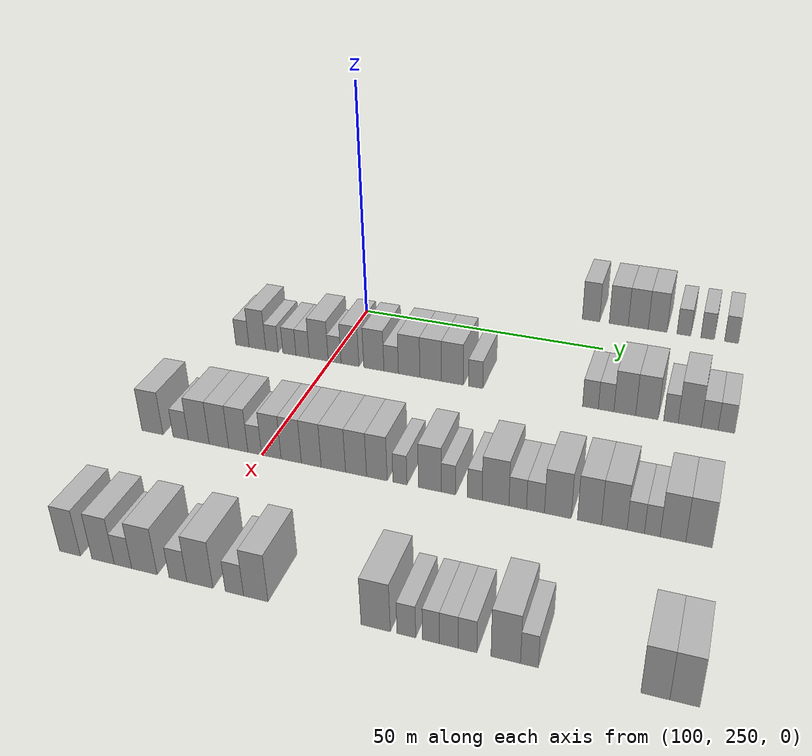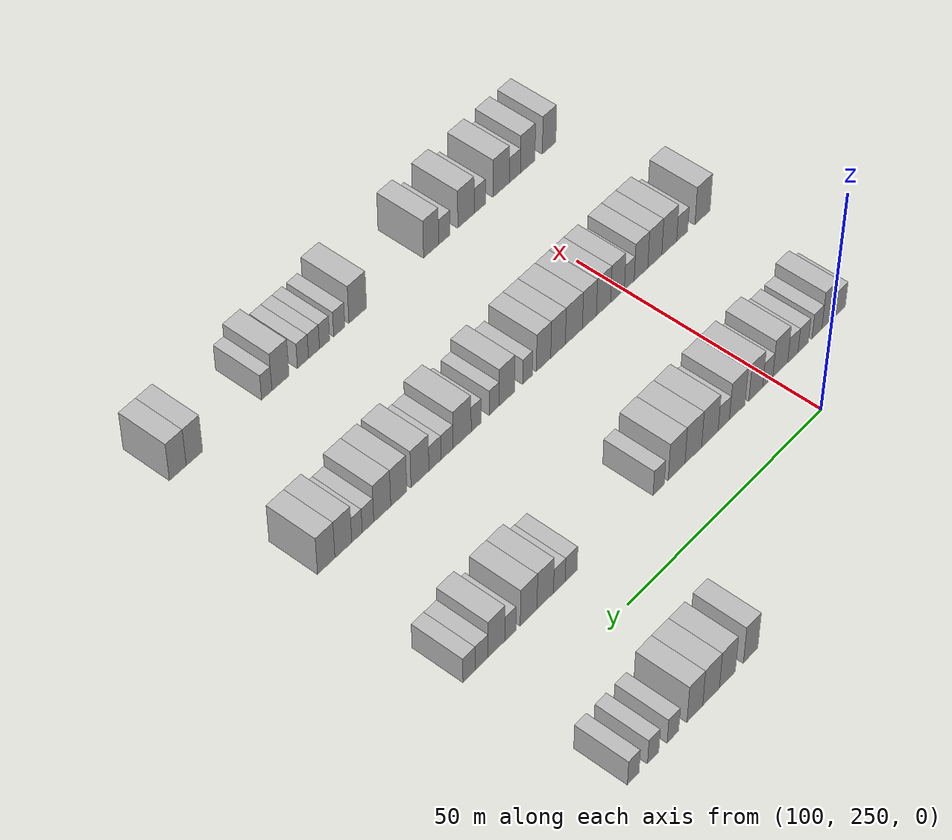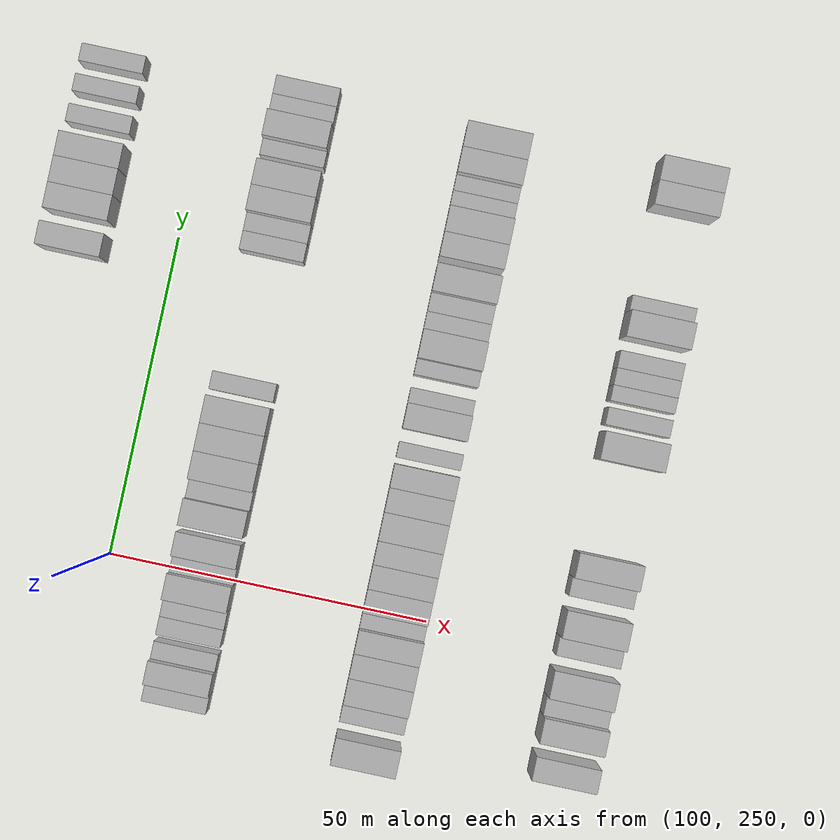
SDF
<sdf version="1.6">
 <world name="default">
  <model name="building_656">
   <static>1</static>
   <pose>85.0000 295.6722 0 0.000000 0.000000 0.000000</pose>
   <link name="link">
    <pose>0 0 4.50 0 0 0</pose>
    <collision name="collision"><geometry><box><size>10.0000 3.6023 9.0000</size></box></geometry></collision>
    <visual name="visual">
     <cast_shadows>0</cast_shadows>
     <geometry><box><size>10.0000 3.6023 9.0000</size></box></geometry>
     <material>
      <script>
       <uri>model://HANNAS_wall/materials/scripts</uri>
       <uri>model://HANNAS_wall/materials/textures</uri>
       <name>vrc/HANNAS_wall</name>
      </script>
     </material>
    </visual>
   </link>
  </model>
  <model name="building_657">
   <static>1</static>
   <pose>85.0000 301.4416 0 0.000000 0.000000 0.000000</pose>
   <link name="link">
    <pose>0 0 4.50 0 0 0</pose>
    <collision name="collision"><geometry><box><size>10.0000 3.9364 9.0000</size></box></geometry></collision>
    <visual name="visual">
     <cast_shadows>0</cast_shadows>
     <geometry><box><size>10.0000 3.9364 9.0000</size></box></geometry>
     <material>
      <script>
       <uri>model://HANNAS_wall/materials/scripts</uri>
       <uri>model://HANNAS_wall/materials/textures</uri>
       <name>vrc/HANNAS_wall</name>
      </script>
     </material>
    </visual>
   </link>
  </model>
  <model name="building_658">
   <static>1</static>
   <pose>85.0000 305.4466 0 0.000000 0.000000 0.000000</pose>
   <link name="link">
    <pose>0 0 4.50 0 0 0</pose>
    <collision name="collision"><geometry><box><size>10.0000 4.0737 9.0000</size></box></geometry></collision>
    <visual name="visual">
     <cast_shadows>0</cast_shadows>
     <geometry><box><size>10.0000 4.0737 9.0000</size></box></geometry>
     <material>
      <script>
       <uri>model://HANNAS_wall/materials/scripts</uri>
       <uri>model://HANNAS_wall/materials/textures</uri>
       <name>vrc/HANNAS_wall</name>
      </script>
     </material>
    </visual>
   </link>
  </model>
  <model name="building_659">
   <static>1</static>
   <pose>85.0000 309.3967 0 0.000000 0.000000 0.000000</pose>
   <link name="link">
    <pose>0 0 4.50 0 0 0</pose>
    <collision name="collision"><geometry><box><size>10.0000 3.8263 9.0000</size></box></geometry></collision>
    <visual name="visual">
     <cast_shadows>0</cast_shadows>
     <geometry><box><size>10.0000 3.8263 9.0000</size></box></geometry>
     <material>
      <script>
       <uri>model://HANNAS_wall/materials/scripts</uri>
       <uri>model://HANNAS_wall/materials/textures</uri>
       <name>vrc/HANNAS_wall</name>
      </script>
     </material>
    </visual>
   </link>
  </model>
  <model name="building_660">
   <static>1</static>
   <pose>85.0000 314.6953 0 0.000000 0.000000 0.000000</pose>
   <link name="link">
    <pose>0 0 3.00 0 0 0</pose>
    <collision name="collision"><geometry><box><size>10.0000 2.7709 6.0000</size></box></geometry></collision>
    <visual name="visual">
     <cast_shadows>0</cast_shadows>
     <geometry><box><size>10.0000 2.7709 6.0000</size></box></geometry>
     <material>
      <script>
       <uri>model://HANNAS_wall/materials/scripts</uri>
       <uri>model://HANNAS_wall/materials/textures</uri>
       <name>vrc/HANNAS_wall</name>
      </script>
     </material>
    </visual>
   </link>
  </model>
  <model name="building_661">
   <static>1</static>
   <pose>85.0000 319.4210 0 0.000000 0.000000 0.000000</pose>
   <link name="link">
    <pose>0 0 3.00 0 0 0</pose>
    <collision name="collision"><geometry><box><size>10.0000 2.6805 6.0000</size></box></geometry></collision>
    <visual name="visual">
     <cast_shadows>0</cast_shadows>
     <geometry><box><size>10.0000 2.6805 6.0000</size></box></geometry>
     <material>
      <script>
       <uri>model://HANNAS_wall/materials/scripts</uri>
       <uri>model://HANNAS_wall/materials/textures</uri>
       <name>vrc/HANNAS_wall</name>
      </script>
     </material>
    </visual>
   </link>
  </model>
  <model name="building_662">
   <static>1</static>
   <pose>85.0000 324.1314 0 0.000000 0.000000 0.000000</pose>
   <link name="link">
    <pose>0 0 3.00 0 0 0</pose>
    <collision name="collision"><geometry><box><size>10.0000 2.7404 6.0000</size></box></geometry></collision>
    <visual name="visual">
     <cast_shadows>0</cast_shadows>
     <geometry><box><size>10.0000 2.7404 6.0000</size></box></geometry>
     <material>
      <script>
       <uri>model://HANNAS_wall/materials/scripts</uri>
       <uri>model://HANNAS_wall/materials/textures</uri>
       <name>vrc/HANNAS_wall</name>
      </script>
     </material>
    </visual>
   </link>
  </model>
  <model name="building_856">
   <static>1</static>
   <pose>115.0000 231.1654 0 0.000000 0.000000 0.000000</pose>
   <link name="link">
    <pose>0 0 3.00 0 0 0</pose>
    <collision name="collision"><geometry><box><size>10.0000 2.9213 6.0000</size></box></geometry></collision>
    <visual name="visual">
     <cast_shadows>0</cast_shadows>
     <geometry><box><size>10.0000 2.9213 6.0000</size></box></geometry>
     <material>
      <script>
       <uri>model://HANNAS_wall/materials/scripts</uri>
       <uri>model://HANNAS_wall/materials/textures</uri>
       <name>vrc/HANNAS_wall</name>
      </script>
     </material>
    </visual>
   </link>
  </model>
  <model name="building_857">
   <static>1</static>
   <pose>115.0000 234.4390 0 0.000000 0.000000 0.000000</pose>
   <link name="link">
    <pose>0 0 4.50 0 0 0</pose>
    <collision name="collision"><geometry><box><size>10.0000 3.6260 9.0000</size></box></geometry></collision>
    <visual name="visual">
     <cast_shadows>0</cast_shadows>
     <geometry><box><size>10.0000 3.6260 9.0000</size></box></geometry>
     <material>
      <script>
       <uri>model://HANNAS_wall/materials/scripts</uri>
       <uri>model://HANNAS_wall/materials/textures</uri>
       <name>vrc/HANNAS_wall</name>
      </script>
     </material>
    </visual>
   </link>
  </model>
  <model name="building_858">
   <static>1</static>
   <pose>115.0000 237.6029 0 0.000000 0.000000 0.000000</pose>
   <link name="link">
    <pose>0 0 3.00 0 0 0</pose>
    <collision name="collision"><geometry><box><size>10.0000 2.7017 6.0000</size></box></geometry></collision>
    <visual name="visual">
     <cast_shadows>0</cast_shadows>
     <geometry><box><size>10.0000 2.7017 6.0000</size></box></geometry>
     <material>
      <script>
       <uri>model://HANNAS_wall/materials/scripts</uri>
       <uri>model://HANNAS_wall/materials/textures</uri>
       <name>vrc/HANNAS_wall</name>
      </script>
     </material>
    </visual>
   </link>
  </model>
  <model name="building_859">
   <static>1</static>
   <pose>115.0000 241.3608 0 0.000000 0.000000 0.000000</pose>
   <link name="link">
    <pose>0 0 3.00 0 0 0</pose>
    <collision name="collision"><geometry><box><size>10.0000 2.8141 6.0000</size></box></geometry></collision>
    <visual name="visual">
     <cast_shadows>0</cast_shadows>
     <geometry><box><size>10.0000 2.8141 6.0000</size></box></geometry>
     <material>
      <script>
       <uri>model://HANNAS_wall/materials/scripts</uri>
       <uri>model://HANNAS_wall/materials/textures</uri>
       <name>vrc/HANNAS_wall</name>
      </script>
     </material>
    </visual>
   </link>
  </model>
  <model name="building_860">
   <static>1</static>
   <pose>115.0000 244.1861 0 0.000000 0.000000 0.000000</pose>
   <link name="link">
    <pose>0 0 3.00 0 0 0</pose>
    <collision name="collision"><geometry><box><size>10.0000 2.8364 6.0000</size></box></geometry></collision>
    <visual name="visual">
     <cast_shadows>0</cast_shadows>
     <geometry><box><size>10.0000 2.8364 6.0000</size></box></geometry>
     <material>
      <script>
       <uri>model://HANNAS_wall/materials/scripts</uri>
       <uri>model://HANNAS_wall/materials/textures</uri>
       <name>vrc/HANNAS_wall</name>
      </script>
     </material>
    </visual>
   </link>
  </model>
  <model name="building_861">
   <static>1</static>
   <pose>115.0000 247.6095 0 0.000000 0.000000 0.000000</pose>
   <link name="link">
    <pose>0 0 4.50 0 0 0</pose>
    <collision name="collision"><geometry><box><size>10.0000 4.0104 9.0000</size></box></geometry></collision>
    <visual name="visual">
     <cast_shadows>0</cast_shadows>
     <geometry><box><size>10.0000 4.0104 9.0000</size></box></geometry>
     <material>
      <script>
       <uri>model://HANNAS_wall/materials/scripts</uri>
       <uri>model://HANNAS_wall/materials/textures</uri>
       <name>vrc/HANNAS_wall</name>
      </script>
     </material>
    </visual>
   </link>
  </model>
  <model name="building_862">
   <static>1</static>
   <pose>115.0000 250.9654 0 0.000000 0.000000 0.000000</pose>
   <link name="link">
    <pose>0 0 3.00 0 0 0</pose>
    <collision name="collision"><geometry><box><size>10.0000 2.7015 6.0000</size></box></geometry></collision>
    <visual name="visual">
     <cast_shadows>0</cast_shadows>
     <geometry><box><size>10.0000 2.7015 6.0000</size></box></geometry>
     <material>
      <script>
       <uri>model://HANNAS_wall/materials/scripts</uri>
       <uri>model://HANNAS_wall/materials/textures</uri>
       <name>vrc/HANNAS_wall</name>
      </script>
     </material>
    </visual>
   </link>
  </model>
  <model name="building_863">
   <static>1</static>
   <pose>115.0000 254.1731 0 0.000000 0.000000 0.000000</pose>
   <link name="link">
    <pose>0 0 4.50 0 0 0</pose>
    <collision name="collision"><geometry><box><size>10.0000 3.7139 9.0000</size></box></geometry></collision>
    <visual name="visual">
     <cast_shadows>0</cast_shadows>
     <geometry><box><size>10.0000 3.7139 9.0000</size></box></geometry>
     <material>
      <script>
       <uri>model://HANNAS_wall/materials/scripts</uri>
       <uri>model://HANNAS_wall/materials/textures</uri>
       <name>vrc/HANNAS_wall</name>
      </script>
     </material>
    </visual>
   </link>
  </model>
  <model name="building_864">
   <static>1</static>
   <pose>115.0000 259.0978 0 0.000000 0.000000 0.000000</pose>
   <link name="link">
    <pose>0 0 4.50 0 0 0</pose>
    <collision name="collision"><geometry><box><size>10.0000 4.1354 9.0000</size></box></geometry></collision>
    <visual name="visual">
     <cast_shadows>0</cast_shadows>
     <geometry><box><size>10.0000 4.1354 9.0000</size></box></geometry>
     <material>
      <script>
       <uri>model://HANNAS_wall/materials/scripts</uri>
       <uri>model://HANNAS_wall/materials/textures</uri>
       <name>vrc/HANNAS_wall</name>
      </script>
     </material>
    </visual>
   </link>
  </model>
  <model name="building_865">
   <static>1</static>
   <pose>115.0000 262.6430 0 0.000000 0.000000 0.000000</pose>
   <link name="link">
    <pose>0 0 3.00 0 0 0</pose>
    <collision name="collision"><geometry><box><size>10.0000 2.9552 6.0000</size></box></geometry></collision>
    <visual name="visual">
     <cast_shadows>0</cast_shadows>
     <geometry><box><size>10.0000 2.9552 6.0000</size></box></geometry>
     <material>
      <script>
       <uri>model://HANNAS_wall/materials/scripts</uri>
       <uri>model://HANNAS_wall/materials/textures</uri>
       <name>vrc/HANNAS_wall</name>
      </script>
     </material>
    </visual>
   </link>
  </model>
  <model name="building_866">
   <static>1</static>
   <pose>115.0000 266.2830 0 0.000000 0.000000 0.000000</pose>
   <link name="link">
    <pose>0 0 4.50 0 0 0</pose>
    <collision name="collision"><geometry><box><size>10.0000 4.3247 9.0000</size></box></geometry></collision>
    <visual name="visual">
     <cast_shadows>0</cast_shadows>
     <geometry><box><size>10.0000 4.3247 9.0000</size></box></geometry>
     <material>
      <script>
       <uri>model://HANNAS_wall/materials/scripts</uri>
       <uri>model://HANNAS_wall/materials/textures</uri>
       <name>vrc/HANNAS_wall</name>
      </script>
     </material>
    </visual>
   </link>
  </model>
  <model name="building_867">
   <static>1</static>
   <pose>115.0000 270.5952 0 0.000000 0.000000 0.000000</pose>
   <link name="link">
    <pose>0 0 4.50 0 0 0</pose>
    <collision name="collision"><geometry><box><size>10.0000 4.2998 9.0000</size></box></geometry></collision>
    <visual name="visual">
     <cast_shadows>0</cast_shadows>
     <geometry><box><size>10.0000 4.2998 9.0000</size></box></geometry>
     <material>
      <script>
       <uri>model://HANNAS_wall/materials/scripts</uri>
       <uri>model://HANNAS_wall/materials/textures</uri>
       <name>vrc/HANNAS_wall</name>
      </script>
     </material>
    </visual>
   </link>
  </model>
  <model name="building_868">
   <static>1</static>
   <pose>115.0000 274.9008 0 0.000000 0.000000 0.000000</pose>
   <link name="link">
    <pose>0 0 4.50 0 0 0</pose>
    <collision name="collision"><geometry><box><size>10.0000 4.3114 9.0000</size></box></geometry></collision>
    <visual name="visual">
     <cast_shadows>0</cast_shadows>
     <geometry><box><size>10.0000 4.3114 9.0000</size></box></geometry>
     <material>
      <script>
       <uri>model://HANNAS_wall/materials/scripts</uri>
       <uri>model://HANNAS_wall/materials/textures</uri>
       <name>vrc/HANNAS_wall</name>
      </script>
     </material>
    </visual>
   </link>
  </model>
  <model name="building_869">
   <static>1</static>
   <pose>115.0000 279.4693 0 0.000000 0.000000 0.000000</pose>
   <link name="link">
    <pose>0 0 3.00 0 0 0</pose>
    <collision name="collision"><geometry><box><size>10.0000 2.8256 6.0000</size></box></geometry></collision>
    <visual name="visual">
     <cast_shadows>0</cast_shadows>
     <geometry><box><size>10.0000 2.8256 6.0000</size></box></geometry>
     <material>
      <script>
       <uri>model://HANNAS_wall/materials/scripts</uri>
       <uri>model://HANNAS_wall/materials/textures</uri>
       <name>vrc/HANNAS_wall</name>
      </script>
     </material>
    </visual>
   </link>
  </model>
  <model name="building_870">
   <static>1</static>
   <pose>115.0000 301.2437 0 0.000000 0.000000 0.000000</pose>
   <link name="link">
    <pose>0 0 3.00 0 0 0</pose>
    <collision name="collision"><geometry><box><size>10.0000 2.9077 6.0000</size></box></geometry></collision>
    <visual name="visual">
     <cast_shadows>0</cast_shadows>
     <geometry><box><size>10.0000 2.9077 6.0000</size></box></geometry>
     <material>
      <script>
       <uri>model://HANNAS_wall/materials/scripts</uri>
       <uri>model://HANNAS_wall/materials/textures</uri>
       <name>vrc/HANNAS_wall</name>
      </script>
     </material>
    </visual>
   </link>
  </model>
  <model name="building_871">
   <static>1</static>
   <pose>115.0000 304.1183 0 0.000000 0.000000 0.000000</pose>
   <link name="link">
    <pose>0 0 3.00 0 0 0</pose>
    <collision name="collision"><geometry><box><size>10.0000 2.8414 6.0000</size></box></geometry></collision>
    <visual name="visual">
     <cast_shadows>0</cast_shadows>
     <geometry><box><size>10.0000 2.8414 6.0000</size></box></geometry>
     <material>
      <script>
       <uri>model://HANNAS_wall/materials/scripts</uri>
       <uri>model://HANNAS_wall/materials/textures</uri>
       <name>vrc/HANNAS_wall</name>
      </script>
     </material>
    </visual>
   </link>
  </model>
  <model name="building_872">
   <static>1</static>
   <pose>115.0000 307.5139 0 0.000000 0.000000 0.000000</pose>
   <link name="link">
    <pose>0 0 4.50 0 0 0</pose>
    <collision name="collision"><geometry><box><size>10.0000 3.9498 9.0000</size></box></geometry></collision>
    <visual name="visual">
     <cast_shadows>0</cast_shadows>
     <geometry><box><size>10.0000 3.9498 9.0000</size></box></geometry>
     <material>
      <script>
       <uri>model://HANNAS_wall/materials/scripts</uri>
       <uri>model://HANNAS_wall/materials/textures</uri>
       <name>vrc/HANNAS_wall</name>
      </script>
     </material>
    </visual>
   </link>
  </model>
  <model name="building_873">
   <static>1</static>
   <pose>115.0000 311.5006 0 0.000000 0.000000 0.000000</pose>
   <link name="link">
    <pose>0 0 4.50 0 0 0</pose>
    <collision name="collision"><geometry><box><size>10.0000 4.0236 9.0000</size></box></geometry></collision>
    <visual name="visual">
     <cast_shadows>0</cast_shadows>
     <geometry><box><size>10.0000 4.0236 9.0000</size></box></geometry>
     <material>
      <script>
       <uri>model://HANNAS_wall/materials/scripts</uri>
       <uri>model://HANNAS_wall/materials/textures</uri>
       <name>vrc/HANNAS_wall</name>
      </script>
     </material>
    </visual>
   </link>
  </model>
  <model name="building_874">
   <static>1</static>
   <pose>115.0000 315.7950 0 0.000000 0.000000 0.000000</pose>
   <link name="link">
    <pose>0 0 3.00 0 0 0</pose>
    <collision name="collision"><geometry><box><size>10.0000 2.5651 6.0000</size></box></geometry></collision>
    <visual name="visual">
     <cast_shadows>0</cast_shadows>
     <geometry><box><size>10.0000 2.5651 6.0000</size></box></geometry>
     <material>
      <script>
       <uri>model://HANNAS_wall/materials/scripts</uri>
       <uri>model://HANNAS_wall/materials/textures</uri>
       <name>vrc/HANNAS_wall</name>
      </script>
     </material>
    </visual>
   </link>
  </model>
  <model name="building_875">
   <static>1</static>
   <pose>115.0000 319.0958 0 0.000000 0.000000 0.000000</pose>
   <link name="link">
    <pose>0 0 4.50 0 0 0</pose>
    <collision name="collision"><geometry><box><size>10.0000 4.0364 9.0000</size></box></geometry></collision>
    <visual name="visual">
     <cast_shadows>0</cast_shadows>
     <geometry><box><size>10.0000 4.0364 9.0000</size></box></geometry>
     <material>
      <script>
       <uri>model://HANNAS_wall/materials/scripts</uri>
       <uri>model://HANNAS_wall/materials/textures</uri>
       <name>vrc/HANNAS_wall</name>
      </script>
     </material>
    </visual>
   </link>
  </model>
  <model name="building_876">
   <static>1</static>
   <pose>115.0000 322.5828 0 0.000000 0.000000 0.000000</pose>
   <link name="link">
    <pose>0 0 3.00 0 0 0</pose>
    <collision name="collision"><geometry><box><size>10.0000 2.9378 6.0000</size></box></geometry></collision>
    <visual name="visual">
     <cast_shadows>0</cast_shadows>
     <geometry><box><size>10.0000 2.9378 6.0000</size></box></geometry>
     <material>
      <script>
       <uri>model://HANNAS_wall/materials/scripts</uri>
       <uri>model://HANNAS_wall/materials/textures</uri>
       <name>vrc/HANNAS_wall</name>
      </script>
     </material>
    </visual>
   </link>
  </model>
  <model name="building_877">
   <static>1</static>
   <pose>115.0000 325.4956 0 0.000000 0.000000 0.000000</pose>
   <link name="link">
    <pose>0 0 3.00 0 0 0</pose>
    <collision name="collision"><geometry><box><size>10.0000 2.8878 6.0000</size></box></geometry></collision>
    <visual name="visual">
     <cast_shadows>0</cast_shadows>
     <geometry><box><size>10.0000 2.8878 6.0000</size></box></geometry>
     <material>
      <script>
       <uri>model://HANNAS_wall/materials/scripts</uri>
       <uri>model://HANNAS_wall/materials/textures</uri>
       <name>vrc/HANNAS_wall</name>
      </script>
     </material>
    </visual>
   </link>
  </model>
  <model name="building_1085">
   <static>1</static>
   <pose>145.0000 228.8606 0 0.000000 0.000000 0.000000</pose>
   <link name="link">
    <pose>0 0 4.50 0 0 0</pose>
    <collision name="collision"><geometry><box><size>10.0000 4.1892 9.0000</size></box></geometry></collision>
    <visual name="visual">
     <cast_shadows>0</cast_shadows>
     <geometry><box><size>10.0000 4.1892 9.0000</size></box></geometry>
     <material>
      <script>
       <uri>model://HANNAS_wall/materials/scripts</uri>
       <uri>model://HANNAS_wall/materials/textures</uri>
       <name>vrc/HANNAS_wall</name>
      </script>
     </material>
    </visual>
   </link>
  </model>
  <model name="building_1086">
   <static>1</static>
   <pose>145.0000 234.4543 0 0.000000 0.000000 0.000000</pose>
   <link name="link">
    <pose>0 0 3.00 0 0 0</pose>
    <collision name="collision"><geometry><box><size>10.0000 2.9981 6.0000</size></box></geometry></collision>
    <visual name="visual">
     <cast_shadows>0</cast_shadows>
     <geometry><box><size>10.0000 2.9981 6.0000</size></box></geometry>
     <material>
      <script>
       <uri>model://HANNAS_wall/materials/scripts</uri>
       <uri>model://HANNAS_wall/materials/textures</uri>
       <name>vrc/HANNAS_wall</name>
      </script>
     </material>
    </visual>
   </link>
  </model>
  <model name="building_1087">
   <static>1</static>
   <pose>145.0000 237.9781 0 0.000000 0.000000 0.000000</pose>
   <link name="link">
    <pose>0 0 4.50 0 0 0</pose>
    <collision name="collision"><geometry><box><size>10.0000 4.0496 9.0000</size></box></geometry></collision>
    <visual name="visual">
     <cast_shadows>0</cast_shadows>
     <geometry><box><size>10.0000 4.0496 9.0000</size></box></geometry>
     <material>
      <script>
       <uri>model://HANNAS_wall/materials/scripts</uri>
       <uri>model://HANNAS_wall/materials/textures</uri>
       <name>vrc/HANNAS_wall</name>
      </script>
     </material>
    </visual>
   </link>
  </model>
  <model name="building_1088">
   <static>1</static>
   <pose>145.0000 241.8821 0 0.000000 0.000000 0.000000</pose>
   <link name="link">
    <pose>0 0 4.50 0 0 0</pose>
    <collision name="collision"><geometry><box><size>10.0000 3.7586 9.0000</size></box></geometry></collision>
    <visual name="visual">
     <cast_shadows>0</cast_shadows>
     <geometry><box><size>10.0000 3.7586 9.0000</size></box></geometry>
     <material>
      <script>
       <uri>model://HANNAS_wall/materials/scripts</uri>
       <uri>model://HANNAS_wall/materials/textures</uri>
       <name>vrc/HANNAS_wall</name>
      </script>
     </material>
    </visual>
   </link>
  </model>
  <model name="building_1089">
   <static>1</static>
   <pose>145.0000 245.5880 0 0.000000 0.000000 0.000000</pose>
   <link name="link">
    <pose>0 0 4.50 0 0 0</pose>
    <collision name="collision"><geometry><box><size>10.0000 3.6532 9.0000</size></box></geometry></collision>
    <visual name="visual">
     <cast_shadows>0</cast_shadows>
     <geometry><box><size>10.0000 3.6532 9.0000</size></box></geometry>
     <material>
      <script>
       <uri>model://HANNAS_wall/materials/scripts</uri>
       <uri>model://HANNAS_wall/materials/textures</uri>
       <name>vrc/HANNAS_wall</name>
      </script>
     </material>
    </visual>
   </link>
  </model>
  <model name="building_1090">
   <static>1</static>
   <pose>145.0000 248.7134 0 0.000000 0.000000 0.000000</pose>
   <link name="link">
    <pose>0 0 3.00 0 0 0</pose>
    <collision name="collision"><geometry><box><size>10.0000 2.5976 6.0000</size></box></geometry></collision>
    <visual name="visual">
     <cast_shadows>0</cast_shadows>
     <geometry><box><size>10.0000 2.5976 6.0000</size></box></geometry>
     <material>
      <script>
       <uri>model://HANNAS_wall/materials/scripts</uri>
       <uri>model://HANNAS_wall/materials/textures</uri>
       <name>vrc/HANNAS_wall</name>
      </script>
     </material>
    </visual>
   </link>
  </model>
  <model name="building_1091">
   <static>1</static>
   <pose>145.0000 251.8370 0 0.000000 0.000000 0.000000</pose>
   <link name="link">
    <pose>0 0 4.50 0 0 0</pose>
    <collision name="collision"><geometry><box><size>10.0000 3.6496 9.0000</size></box></geometry></collision>
    <visual name="visual">
     <cast_shadows>0</cast_shadows>
     <geometry><box><size>10.0000 3.6496 9.0000</size></box></geometry>
     <material>
      <script>
       <uri>model://HANNAS_wall/materials/scripts</uri>
       <uri>model://HANNAS_wall/materials/textures</uri>
       <name>vrc/HANNAS_wall</name>
      </script>
     </material>
    </visual>
   </link>
  </model>
  <model name="building_1092">
   <static>1</static>
   <pose>145.0000 255.5359 0 0.000000 0.000000 0.000000</pose>
   <link name="link">
    <pose>0 0 4.50 0 0 0</pose>
    <collision name="collision"><geometry><box><size>10.0000 3.7481 9.0000</size></box></geometry></collision>
    <visual name="visual">
     <cast_shadows>0</cast_shadows>
     <geometry><box><size>10.0000 3.7481 9.0000</size></box></geometry>
     <material>
      <script>
       <uri>model://HANNAS_wall/materials/scripts</uri>
       <uri>model://HANNAS_wall/materials/textures</uri>
       <name>vrc/HANNAS_wall</name>
      </script>
     </material>
    </visual>
   </link>
  </model>
  <model name="building_1093">
   <static>1</static>
   <pose>145.0000 259.2326 0 0.000000 0.000000 0.000000</pose>
   <link name="link">
    <pose>0 0 4.50 0 0 0</pose>
    <collision name="collision"><geometry><box><size>10.0000 3.6454 9.0000</size></box></geometry></collision>
    <visual name="visual">
     <cast_shadows>0</cast_shadows>
     <geometry><box><size>10.0000 3.6454 9.0000</size></box></geometry>
     <material>
      <script>
       <uri>model://HANNAS_wall/materials/scripts</uri>
       <uri>model://HANNAS_wall/materials/textures</uri>
       <name>vrc/HANNAS_wall</name>
      </script>
     </material>
    </visual>
   </link>
  </model>
  <model name="building_1094">
   <static>1</static>
   <pose>145.0000 263.2616 0 0.000000 0.000000 0.000000</pose>
   <link name="link">
    <pose>0 0 4.50 0 0 0</pose>
    <collision name="collision"><geometry><box><size>10.0000 4.4126 9.0000</size></box></geometry></collision>
    <visual name="visual">
     <cast_shadows>0</cast_shadows>
     <geometry><box><size>10.0000 4.4126 9.0000</size></box></geometry>
     <material>
      <script>
       <uri>model://HANNAS_wall/materials/scripts</uri>
       <uri>model://HANNAS_wall/materials/textures</uri>
       <name>vrc/HANNAS_wall</name>
      </script>
     </material>
    </visual>
   </link>
  </model>
  <model name="building_1095">
   <static>1</static>
   <pose>145.0000 267.3506 0 0.000000 0.000000 0.000000</pose>
   <link name="link">
    <pose>0 0 4.50 0 0 0</pose>
    <collision name="collision"><geometry><box><size>10.0000 3.7653 9.0000</size></box></geometry></collision>
    <visual name="visual">
     <cast_shadows>0</cast_shadows>
     <geometry><box><size>10.0000 3.7653 9.0000</size></box></geometry>
     <material>
      <script>
       <uri>model://HANNAS_wall/materials/scripts</uri>
       <uri>model://HANNAS_wall/materials/textures</uri>
       <name>vrc/HANNAS_wall</name>
      </script>
     </material>
    </visual>
   </link>
  </model>
  <model name="building_1096">
   <static>1</static>
   <pose>145.0000 271.0624 0 0.000000 0.000000 0.000000</pose>
   <link name="link">
    <pose>0 0 4.50 0 0 0</pose>
    <collision name="collision"><geometry><box><size>10.0000 3.6583 9.0000</size></box></geometry></collision>
    <visual name="visual">
     <cast_shadows>0</cast_shadows>
     <geometry><box><size>10.0000 3.6583 9.0000</size></box></geometry>
     <material>
      <script>
       <uri>model://HANNAS_wall/materials/scripts</uri>
       <uri>model://HANNAS_wall/materials/textures</uri>
       <name>vrc/HANNAS_wall</name>
      </script>
     </material>
    </visual>
   </link>
  </model>
  <model name="building_1097">
   <static>1</static>
   <pose>145.0000 275.1238 0 0.000000 0.000000 0.000000</pose>
   <link name="link">
    <pose>0 0 3.00 0 0 0</pose>
    <collision name="collision"><geometry><box><size>10.0000 2.4645 6.0000</size></box></geometry></collision>
    <visual name="visual">
     <cast_shadows>0</cast_shadows>
     <geometry><box><size>10.0000 2.4645 6.0000</size></box></geometry>
     <material>
      <script>
       <uri>model://HANNAS_wall/materials/scripts</uri>
       <uri>model://HANNAS_wall/materials/textures</uri>
       <name>vrc/HANNAS_wall</name>
      </script>
     </material>
    </visual>
   </link>
  </model>
  <model name="building_1098">
   <static>1</static>
   <pose>145.0000 280.3213 0 0.000000 0.000000 0.000000</pose>
   <link name="link">
    <pose>0 0 4.50 0 0 0</pose>
    <collision name="collision"><geometry><box><size>10.0000 3.9305 9.0000</size></box></geometry></collision>
    <visual name="visual">
     <cast_shadows>0</cast_shadows>
     <geometry><box><size>10.0000 3.9305 9.0000</size></box></geometry>
     <material>
      <script>
       <uri>model://HANNAS_wall/materials/scripts</uri>
       <uri>model://HANNAS_wall/materials/textures</uri>
       <name>vrc/HANNAS_wall</name>
      </script>
     </material>
    </visual>
   </link>
  </model>
  <model name="building_1099">
   <static>1</static>
   <pose>145.0000 283.5149 0 0.000000 0.000000 0.000000</pose>
   <link name="link">
    <pose>0 0 3.00 0 0 0</pose>
    <collision name="collision"><geometry><box><size>10.0000 2.4566 6.0000</size></box></geometry></collision>
    <visual name="visual">
     <cast_shadows>0</cast_shadows>
     <geometry><box><size>10.0000 2.4566 6.0000</size></box></geometry>
     <material>
      <script>
       <uri>model://HANNAS_wall/materials/scripts</uri>
       <uri>model://HANNAS_wall/materials/textures</uri>
       <name>vrc/HANNAS_wall</name>
      </script>
     </material>
    </visual>
   </link>
  </model>
  <model name="building_1100">
   <static>1</static>
   <pose>145.0000 287.9763 0 0.000000 0.000000 0.000000</pose>
   <link name="link">
    <pose>0 0 3.00 0 0 0</pose>
    <collision name="collision"><geometry><box><size>10.0000 2.4664 6.0000</size></box></geometry></collision>
    <visual name="visual">
     <cast_shadows>0</cast_shadows>
     <geometry><box><size>10.0000 2.4664 6.0000</size></box></geometry>
     <material>
      <script>
       <uri>model://HANNAS_wall/materials/scripts</uri>
       <uri>model://HANNAS_wall/materials/textures</uri>
       <name>vrc/HANNAS_wall</name>
      </script>
     </material>
    </visual>
   </link>
  </model>
  <model name="building_1101">
   <static>1</static>
   <pose>145.0000 291.4458 0 0.000000 0.000000 0.000000</pose>
   <link name="link">
    <pose>0 0 4.50 0 0 0</pose>
    <collision name="collision"><geometry><box><size>10.0000 4.4725 9.0000</size></box></geometry></collision>
    <visual name="visual">
     <cast_shadows>0</cast_shadows>
     <geometry><box><size>10.0000 4.4725 9.0000</size></box></geometry>
     <material>
      <script>
       <uri>model://HANNAS_wall/materials/scripts</uri>
       <uri>model://HANNAS_wall/materials/textures</uri>
       <name>vrc/HANNAS_wall</name>
      </script>
     </material>
    </visual>
   </link>
  </model>
  <model name="building_1102">
   <static>1</static>
   <pose>145.0000 295.1280 0 0.000000 0.000000 0.000000</pose>
   <link name="link">
    <pose>0 0 3.00 0 0 0</pose>
    <collision name="collision"><geometry><box><size>10.0000 2.8918 6.0000</size></box></geometry></collision>
    <visual name="visual">
     <cast_shadows>0</cast_shadows>
     <geometry><box><size>10.0000 2.8918 6.0000</size></box></geometry>
     <material>
      <script>
       <uri>model://HANNAS_wall/materials/scripts</uri>
       <uri>model://HANNAS_wall/materials/textures</uri>
       <name>vrc/HANNAS_wall</name>
      </script>
     </material>
    </visual>
   </link>
  </model>
  <model name="building_1103">
   <static>1</static>
   <pose>145.0000 298.0453 0 0.000000 0.000000 0.000000</pose>
   <link name="link">
    <pose>0 0 3.00 0 0 0</pose>
    <collision name="collision"><geometry><box><size>10.0000 2.9428 6.0000</size></box></geometry></collision>
    <visual name="visual">
     <cast_shadows>0</cast_shadows>
     <geometry><box><size>10.0000 2.9428 6.0000</size></box></geometry>
     <material>
      <script>
       <uri>model://HANNAS_wall/materials/scripts</uri>
       <uri>model://HANNAS_wall/materials/textures</uri>
       <name>vrc/HANNAS_wall</name>
      </script>
     </material>
    </visual>
   </link>
  </model>
  <model name="building_1104">
   <static>1</static>
   <pose>145.0000 301.6839 0 0.000000 0.000000 0.000000</pose>
   <link name="link">
    <pose>0 0 4.50 0 0 0</pose>
    <collision name="collision"><geometry><box><size>10.0000 4.3344 9.0000</size></box></geometry></collision>
    <visual name="visual">
     <cast_shadows>0</cast_shadows>
     <geometry><box><size>10.0000 4.3344 9.0000</size></box></geometry>
     <material>
      <script>
       <uri>model://HANNAS_wall/materials/scripts</uri>
       <uri>model://HANNAS_wall/materials/textures</uri>
       <name>vrc/HANNAS_wall</name>
      </script>
     </material>
    </visual>
   </link>
  </model>
  <model name="building_1105">
   <static>1</static>
   <pose>145.0000 306.7563 0 0.000000 0.000000 0.000000</pose>
   <link name="link">
    <pose>0 0 4.50 0 0 0</pose>
    <collision name="collision"><geometry><box><size>10.0000 3.8104 9.0000</size></box></geometry></collision>
    <visual name="visual">
     <cast_shadows>0</cast_shadows>
     <geometry><box><size>10.0000 3.8104 9.0000</size></box></geometry>
     <material>
      <script>
       <uri>model://HANNAS_wall/materials/scripts</uri>
       <uri>model://HANNAS_wall/materials/textures</uri>
       <name>vrc/HANNAS_wall</name>
      </script>
     </material>
    </visual>
   </link>
  </model>
  <model name="building_1106">
   <static>1</static>
   <pose>145.0000 310.6770 0 0.000000 0.000000 0.000000</pose>
   <link name="link">
    <pose>0 0 4.50 0 0 0</pose>
    <collision name="collision"><geometry><box><size>10.0000 4.0309 9.0000</size></box></geometry></collision>
    <visual name="visual">
     <cast_shadows>0</cast_shadows>
     <geometry><box><size>10.0000 4.0309 9.0000</size></box></geometry>
     <material>
      <script>
       <uri>model://HANNAS_wall/materials/scripts</uri>
       <uri>model://HANNAS_wall/materials/textures</uri>
       <name>vrc/HANNAS_wall</name>
      </script>
     </material>
    </visual>
   </link>
  </model>
  <model name="building_1107">
   <static>1</static>
   <pose>145.0000 314.0459 0 0.000000 0.000000 0.000000</pose>
   <link name="link">
    <pose>0 0 3.00 0 0 0</pose>
    <collision name="collision"><geometry><box><size>10.0000 2.7071 6.0000</size></box></geometry></collision>
    <visual name="visual">
     <cast_shadows>0</cast_shadows>
     <geometry><box><size>10.0000 2.7071 6.0000</size></box></geometry>
     <material>
      <script>
       <uri>model://HANNAS_wall/materials/scripts</uri>
       <uri>model://HANNAS_wall/materials/textures</uri>
       <name>vrc/HANNAS_wall</name>
      </script>
     </material>
    </visual>
   </link>
  </model>
  <model name="building_1108">
   <static>1</static>
   <pose>145.0000 316.6201 0 0.000000 0.000000 0.000000</pose>
   <link name="link">
    <pose>0 0 3.00 0 0 0</pose>
    <collision name="collision"><geometry><box><size>10.0000 2.4412 6.0000</size></box></geometry></collision>
    <visual name="visual">
     <cast_shadows>0</cast_shadows>
     <geometry><box><size>10.0000 2.4412 6.0000</size></box></geometry>
     <material>
      <script>
       <uri>model://HANNAS_wall/materials/scripts</uri>
       <uri>model://HANNAS_wall/materials/textures</uri>
       <name>vrc/HANNAS_wall</name>
      </script>
     </material>
    </visual>
   </link>
  </model>
  <model name="building_1109">
   <static>1</static>
   <pose>145.0000 319.8018 0 0.000000 0.000000 0.000000</pose>
   <link name="link">
    <pose>0 0 4.50 0 0 0</pose>
    <collision name="collision"><geometry><box><size>10.0000 3.9222 9.0000</size></box></geometry></collision>
    <visual name="visual">
     <cast_shadows>0</cast_shadows>
     <geometry><box><size>10.0000 3.9222 9.0000</size></box></geometry>
     <material>
      <script>
       <uri>model://HANNAS_wall/materials/scripts</uri>
       <uri>model://HANNAS_wall/materials/textures</uri>
       <name>vrc/HANNAS_wall</name>
      </script>
     </material>
    </visual>
   </link>
  </model>
  <model name="building_1110">
   <static>1</static>
   <pose>145.0000 323.7708 0 0.000000 0.000000 0.000000</pose>
   <link name="link">
    <pose>0 0 4.50 0 0 0</pose>
    <collision name="collision"><geometry><box><size>10.0000 4.0158 9.0000</size></box></geometry></collision>
    <visual name="visual">
     <cast_shadows>0</cast_shadows>
     <geometry><box><size>10.0000 4.0158 9.0000</size></box></geometry>
     <material>
      <script>
       <uri>model://HANNAS_wall/materials/scripts</uri>
       <uri>model://HANNAS_wall/materials/textures</uri>
       <name>vrc/HANNAS_wall</name>
      </script>
     </material>
    </visual>
   </link>
  </model>
  <model name="building_1315">
   <static>1</static>
   <pose>175.0000 232.6686 0 0.000000 0.000000 0.000000</pose>
   <link name="link">
    <pose>0 0 4.50 0 0 0</pose>
    <collision name="collision"><geometry><box><size>10.0000 3.6599 9.0000</size></box></geometry></collision>
    <visual name="visual">
     <cast_shadows>0</cast_shadows>
     <geometry><box><size>10.0000 3.6599 9.0000</size></box></geometry>
     <material>
      <script>
       <uri>model://HANNAS_wall/materials/scripts</uri>
       <uri>model://HANNAS_wall/materials/textures</uri>
       <name>vrc/HANNAS_wall</name>
      </script>
     </material>
    </visual>
   </link>
  </model>
  <model name="building_1316">
   <static>1</static>
   <pose>175.0000 238.4317 0 0.000000 0.000000 0.000000</pose>
   <link name="link">
    <pose>0 0 4.50 0 0 0</pose>
    <collision name="collision"><geometry><box><size>10.0000 3.8663 9.0000</size></box></geometry></collision>
    <visual name="visual">
     <cast_shadows>0</cast_shadows>
     <geometry><box><size>10.0000 3.8663 9.0000</size></box></geometry>
     <material>
      <script>
       <uri>model://HANNAS_wall/materials/scripts</uri>
       <uri>model://HANNAS_wall/materials/textures</uri>
       <name>vrc/HANNAS_wall</name>
      </script>
     </material>
    </visual>
   </link>
  </model>
  <model name="building_1317">
   <static>1</static>
   <pose>175.0000 241.8523 0 0.000000 0.000000 0.000000</pose>
   <link name="link">
    <pose>0 0 3.00 0 0 0</pose>
    <collision name="collision"><geometry><box><size>10.0000 2.9749 6.0000</size></box></geometry></collision>
    <visual name="visual">
     <cast_shadows>0</cast_shadows>
     <geometry><box><size>10.0000 2.9749 6.0000</size></box></geometry>
     <material>
      <script>
       <uri>model://HANNAS_wall/materials/scripts</uri>
       <uri>model://HANNAS_wall/materials/textures</uri>
       <name>vrc/HANNAS_wall</name>
      </script>
     </material>
    </visual>
   </link>
  </model>
  <model name="building_1318">
   <static>1</static>
   <pose>175.0000 245.4885 0 0.000000 0.000000 0.000000</pose>
   <link name="link">
    <pose>0 0 4.50 0 0 0</pose>
    <collision name="collision"><geometry><box><size>10.0000 4.2973 9.0000</size></box></geometry></collision>
    <visual name="visual">
     <cast_shadows>0</cast_shadows>
     <geometry><box><size>10.0000 4.2973 9.0000</size></box></geometry>
     <material>
      <script>
       <uri>model://HANNAS_wall/materials/scripts</uri>
       <uri>model://HANNAS_wall/materials/textures</uri>
       <name>vrc/HANNAS_wall</name>
      </script>
     </material>
    </visual>
   </link>
  </model>
  <model name="building_1319">
   <static>1</static>
   <pose>175.0000 251.1115 0 0.000000 0.000000 0.000000</pose>
   <link name="link">
    <pose>0 0 3.00 0 0 0</pose>
    <collision name="collision"><geometry><box><size>10.0000 2.9488 6.0000</size></box></geometry></collision>
    <visual name="visual">
     <cast_shadows>0</cast_shadows>
     <geometry><box><size>10.0000 2.9488 6.0000</size></box></geometry>
     <material>
      <script>
       <uri>model://HANNAS_wall/materials/scripts</uri>
       <uri>model://HANNAS_wall/materials/textures</uri>
       <name>vrc/HANNAS_wall</name>
      </script>
     </material>
    </visual>
   </link>
  </model>
  <model name="building_1320">
   <static>1</static>
   <pose>175.0000 254.7232 0 0.000000 0.000000 0.000000</pose>
   <link name="link">
    <pose>0 0 4.50 0 0 0</pose>
    <collision name="collision"><geometry><box><size>10.0000 4.2745 9.0000</size></box></geometry></collision>
    <visual name="visual">
     <cast_shadows>0</cast_shadows>
     <geometry><box><size>10.0000 4.2745 9.0000</size></box></geometry>
     <material>
      <script>
       <uri>model://HANNAS_wall/materials/scripts</uri>
       <uri>model://HANNAS_wall/materials/textures</uri>
       <name>vrc/HANNAS_wall</name>
      </script>
     </material>
    </visual>
   </link>
  </model>
  <model name="building_1321">
   <static>1</static>
   <pose>175.0000 260.3265 0 0.000000 0.000000 0.000000</pose>
   <link name="link">
    <pose>0 0 3.00 0 0 0</pose>
    <collision name="collision"><geometry><box><size>10.0000 2.9322 6.0000</size></box></geometry></collision>
    <visual name="visual">
     <cast_shadows>0</cast_shadows>
     <geometry><box><size>10.0000 2.9322 6.0000</size></box></geometry>
     <material>
      <script>
       <uri>model://HANNAS_wall/materials/scripts</uri>
       <uri>model://HANNAS_wall/materials/textures</uri>
       <name>vrc/HANNAS_wall</name>
      </script>
     </material>
    </visual>
   </link>
  </model>
  <model name="building_1322">
   <static>1</static>
   <pose>175.0000 263.7352 0 0.000000 0.000000 0.000000</pose>
   <link name="link">
    <pose>0 0 4.50 0 0 0</pose>
    <collision name="collision"><geometry><box><size>10.0000 3.8851 9.0000</size></box></geometry></collision>
    <visual name="visual">
     <cast_shadows>0</cast_shadows>
     <geometry><box><size>10.0000 3.8851 9.0000</size></box></geometry>
     <material>
      <script>
       <uri>model://HANNAS_wall/materials/scripts</uri>
       <uri>model://HANNAS_wall/materials/textures</uri>
       <name>vrc/HANNAS_wall</name>
      </script>
     </material>
    </visual>
   </link>
  </model>
  <model name="building_1323">
   <static>1</static>
   <pose>175.0000 282.2178 0 0.000000 0.000000 0.000000</pose>
   <link name="link">
    <pose>0 0 4.50 0 0 0</pose>
    <collision name="collision"><geometry><box><size>10.0000 4.3600 9.0000</size></box></geometry></collision>
    <visual name="visual">
     <cast_shadows>0</cast_shadows>
     <geometry><box><size>10.0000 4.3600 9.0000</size></box></geometry>
     <material>
      <script>
       <uri>model://HANNAS_wall/materials/scripts</uri>
       <uri>model://HANNAS_wall/materials/textures</uri>
       <name>vrc/HANNAS_wall</name>
      </script>
     </material>
    </visual>
   </link>
  </model>
  <model name="building_1324">
   <static>1</static>
   <pose>175.0000 286.7661 0 0.000000 0.000000 0.000000</pose>
   <link name="link">
    <pose>0 0 3.00 0 0 0</pose>
    <collision name="collision"><geometry><box><size>10.0000 2.7366 6.0000</size></box></geometry></collision>
    <visual name="visual">
     <cast_shadows>0</cast_shadows>
     <geometry><box><size>10.0000 2.7366 6.0000</size></box></geometry>
     <material>
      <script>
       <uri>model://HANNAS_wall/materials/scripts</uri>
       <uri>model://HANNAS_wall/materials/textures</uri>
       <name>vrc/HANNAS_wall</name>
      </script>
     </material>
    </visual>
   </link>
  </model>
  <model name="building_1325">
   <static>1</static>
   <pose>175.0000 290.3629 0 0.000000 0.000000 0.000000</pose>
   <link name="link">
    <pose>0 0 3.00 0 0 0</pose>
    <collision name="collision"><geometry><box><size>10.0000 2.4570 6.0000</size></box></geometry></collision>
    <visual name="visual">
     <cast_shadows>0</cast_shadows>
     <geometry><box><size>10.0000 2.4570 6.0000</size></box></geometry>
     <material>
      <script>
       <uri>model://HANNAS_wall/materials/scripts</uri>
       <uri>model://HANNAS_wall/materials/textures</uri>
       <name>vrc/HANNAS_wall</name>
      </script>
     </material>
    </visual>
   </link>
  </model>
  <model name="building_1326">
   <static>1</static>
   <pose>175.0000 292.9196 0 0.000000 0.000000 0.000000</pose>
   <link name="link">
    <pose>0 0 3.00 0 0 0</pose>
    <collision name="collision"><geometry><box><size>10.0000 2.6564 6.0000</size></box></geometry></collision>
    <visual name="visual">
     <cast_shadows>0</cast_shadows>
     <geometry><box><size>10.0000 2.6564 6.0000</size></box></geometry>
     <material>
      <script>
       <uri>model://HANNAS_wall/materials/scripts</uri>
       <uri>model://HANNAS_wall/materials/textures</uri>
       <name>vrc/HANNAS_wall</name>
      </script>
     </material>
    </visual>
   </link>
  </model>
  <model name="building_1327">
   <static>1</static>
   <pose>175.0000 295.5966 0 0.000000 0.000000 0.000000</pose>
   <link name="link">
    <pose>0 0 3.00 0 0 0</pose>
    <collision name="collision"><geometry><box><size>10.0000 2.6975 6.0000</size></box></geometry></collision>
    <visual name="visual">
     <cast_shadows>0</cast_shadows>
     <geometry><box><size>10.0000 2.6975 6.0000</size></box></geometry>
     <material>
      <script>
       <uri>model://HANNAS_wall/materials/scripts</uri>
       <uri>model://HANNAS_wall/materials/textures</uri>
       <name>vrc/HANNAS_wall</name>
      </script>
     </material>
    </visual>
   </link>
  </model>
  <model name="building_1328">
   <static>1</static>
   <pose>175.0000 301.0044 0 0.000000 0.000000 0.000000</pose>
   <link name="link">
    <pose>0 0 4.50 0 0 0</pose>
    <collision name="collision"><geometry><box><size>10.0000 4.1182 9.0000</size></box></geometry></collision>
    <visual name="visual">
     <cast_shadows>0</cast_shadows>
     <geometry><box><size>10.0000 4.1182 9.0000</size></box></geometry>
     <material>
      <script>
       <uri>model://HANNAS_wall/materials/scripts</uri>
       <uri>model://HANNAS_wall/materials/textures</uri>
       <name>vrc/HANNAS_wall</name>
      </script>
     </material>
    </visual>
   </link>
  </model>
  <model name="building_1329">
   <static>1</static>
   <pose>175.0000 304.2962 0 0.000000 0.000000 0.000000</pose>
   <link name="link">
    <pose>0 0 3.00 0 0 0</pose>
    <collision name="collision"><geometry><box><size>10.0000 2.4654 6.0000</size></box></geometry></collision>
    <visual name="visual">
     <cast_shadows>0</cast_shadows>
     <geometry><box><size>10.0000 2.4654 6.0000</size></box></geometry>
     <material>
      <script>
       <uri>model://HANNAS_wall/materials/scripts</uri>
       <uri>model://HANNAS_wall/materials/textures</uri>
       <name>vrc/HANNAS_wall</name>
      </script>
     </material>
    </visual>
   </link>
  </model>
  <model name="building_1330">
   <static>1</static>
   <pose>175.0000 321.1802 0 0.000000 0.000000 0.000000</pose>
   <link name="link">
    <pose>0 0 4.50 0 0 0</pose>
    <collision name="collision"><geometry><box><size>10.0000 3.7675 9.0000</size></box></geometry></collision>
    <visual name="visual">
     <cast_shadows>0</cast_shadows>
     <geometry><box><size>10.0000 3.7675 9.0000</size></box></geometry>
     <material>
      <script>
       <uri>model://HANNAS_wall/materials/scripts</uri>
       <uri>model://HANNAS_wall/materials/textures</uri>
       <name>vrc/HANNAS_wall</name>
      </script>
     </material>
    </visual>
   </link>
  </model>
  <model name="building_1331">
   <static>1</static>
   <pose>175.0000 324.9896 0 0.000000 0.000000 0.000000</pose>
   <link name="link">
    <pose>0 0 4.50 0 0 0</pose>
    <collision name="collision"><geometry><box><size>10.0000 3.8514 9.0000</size></box></geometry></collision>
    <visual name="visual">
     <cast_shadows>0</cast_shadows>
     <geometry><box><size>10.0000 3.8514 9.0000</size></box></geometry>
     <material>
      <script>
       <uri>model://HANNAS_wall/materials/scripts</uri>
       <uri>model://HANNAS_wall/materials/textures</uri>
       <name>vrc/HANNAS_wall</name>
      </script>
     </material>
    </visual>
   </link>
  </model>
 </world>
</sdf>
